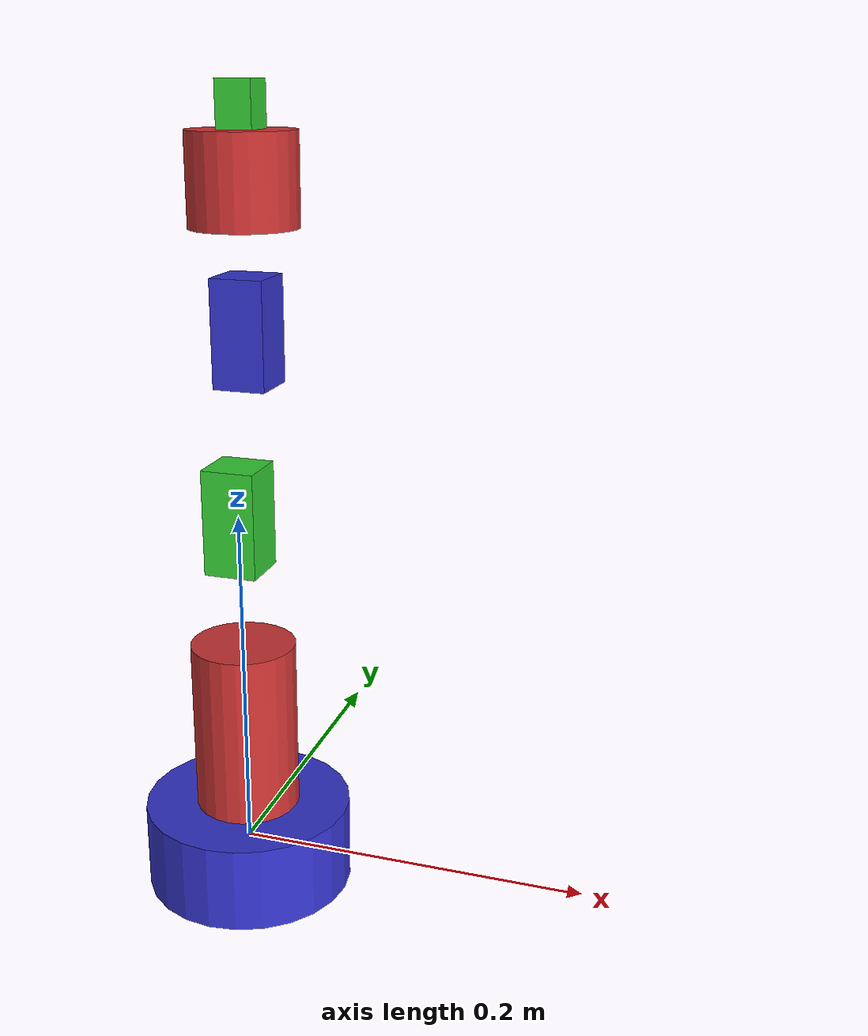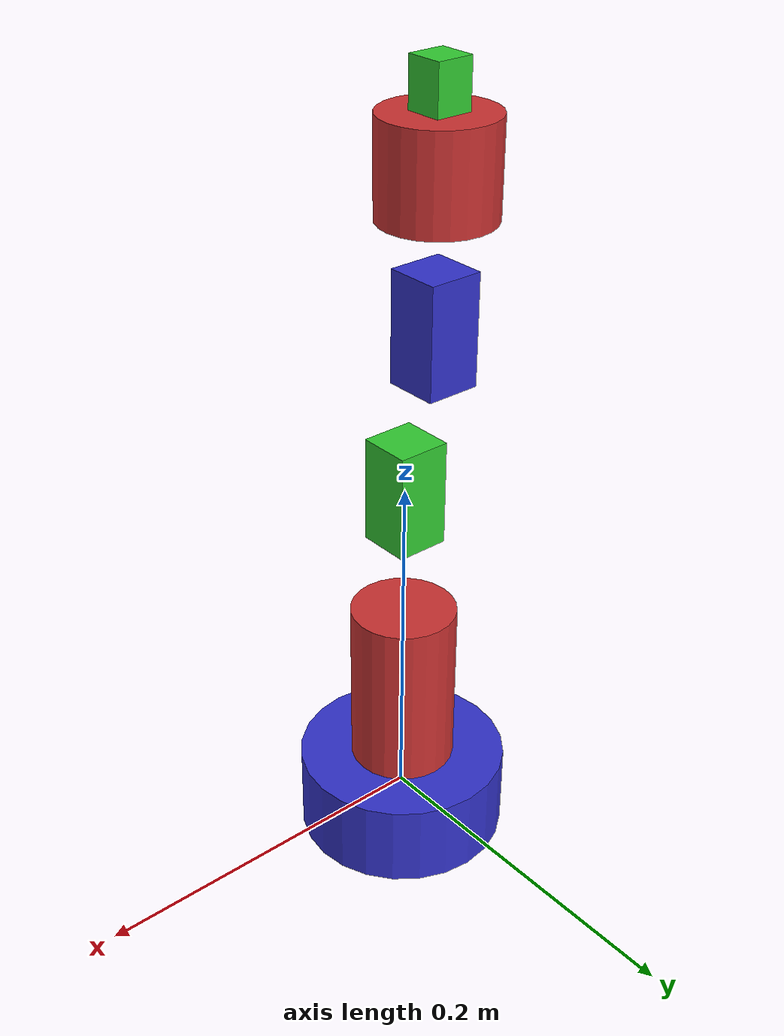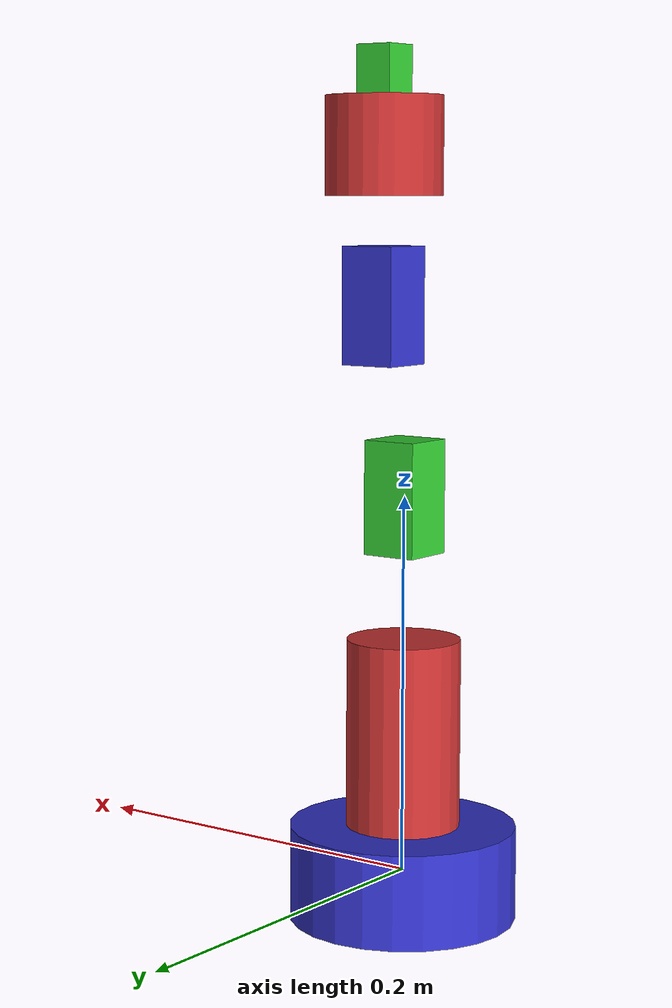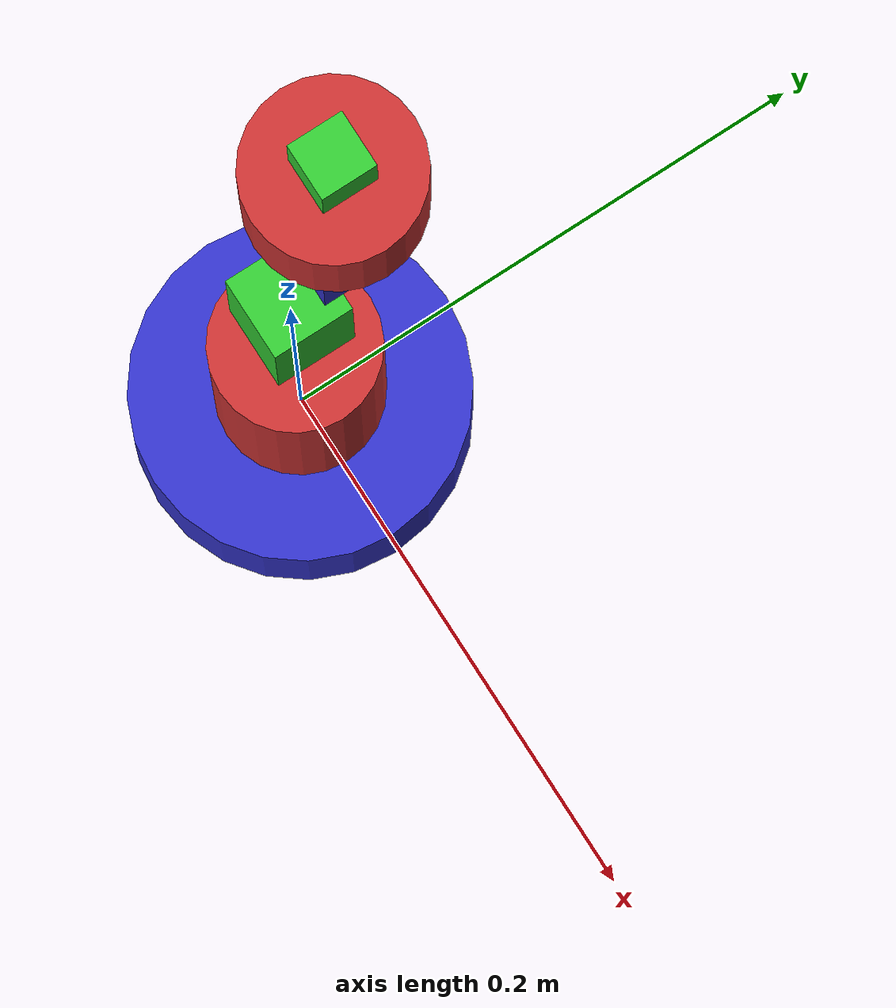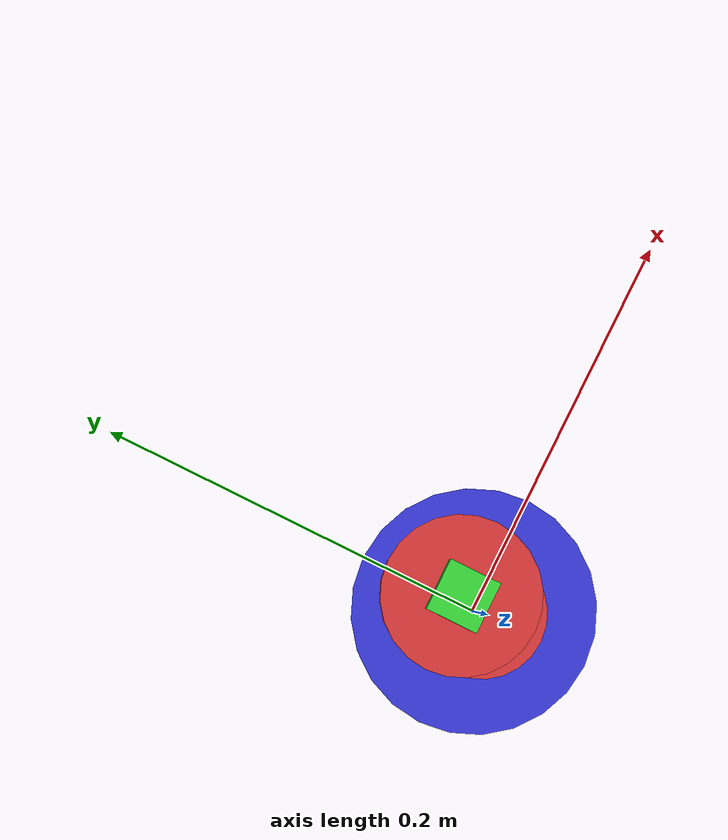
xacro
<?xml version="1.0"?>
<robot xmlns:xacro="http://www.ros.org/wiki/xacro" name="my_robot_arm">

    <!-- Colors -->
    <material name="blue">
        <color rgba="0.2 0.2 0.8 1.0"/>
    </material>
    <material name="red">
        <color rgba="0.8 0.2 0.2 1.0"/>
    </material>
    <material name="green">
        <color rgba="0.2 0.8 0.2 1.0"/>
    </material>

    <!-- World Link -->
    <link name="world"/>

    <!-- Fixed joint between world and base_link -->
    <joint name="world_joint" type="fixed">
        <parent link="world"/>
        <child link="base_link"/>
        <origin xyz="0 0 0" rpy="0 0 0"/>
    </joint>

    <!-- Base Link -->
    <link name="base_link">
        <visual>
            <geometry>
                <cylinder length="0.05" radius="0.06"/>
            </geometry>
            <material name="blue"/>
        </visual>
        <collision>
            <geometry>
                <cylinder length="0.05" radius="0.06"/>
            </geometry>
        </collision>
    </link>

    <!-- Joint 1: Z-axis rotation -->
    <joint name="joint1" type="revolute">
        <parent link="base_link"/>
        <child link="link1"/>
        <origin xyz="0 0 0.05" rpy="0 0 0"/>
        <axis xyz="0 0 1"/>
        <limit lower="-2.356" upper="2.356" effort="100" velocity="1"/>  <!-- -135° to +135° -->
    </joint>

    <link name="link1">
        <inertial>
            <origin xyz="0 0 0.075" rpy="0 0 0"/>
            <mass value="0.5"/>
            <inertia ixx="0.002" ixy="0" ixz="0" iyy="0.002" iyz="0" izz="0.001"/>
        </inertial>
        <visual>
            <geometry>
                <cylinder length="0.15" radius="0.03"/>
            </geometry>
            <material name="red"/>
        </visual>
        <collision>
            <geometry>
                <cylinder length="0.15" radius="0.03"/>
            </geometry>
        </collision>
    </link>

    <!-- Joint 2: X-axis rotation -->
    <joint name="joint2" type="revolute">
        <parent link="link1"/>
        <child link="link2"/>
        <origin xyz="0 0 0.15" rpy="0 0 0"/>
        <axis xyz="1 0 0"/>
        <limit lower="-2.356" upper="2.356" effort="100" velocity="1"/>  <!-- -135° to +135° -->
    </joint>

    <link name="link2">
        <inertial>
            <origin xyz="0 0 0.03" rpy="0 0 0"/>
            <mass value="0.3"/>
            <inertia ixx="0.0005" ixy="0" ixz="0" iyy="0.0005" iyz="0" izz="0.0001"/>
        </inertial>
        <visual>
            <geometry>
                <box size="0.03 0.03 0.06"/>
            </geometry>
            <material name="green"/>
        </visual>
        <collision>
            <geometry>
                <box size="0.03 0.03 0.06"/>
            </geometry>
        </collision>
    </link>

    <!-- Joint 3: X-axis rotation -->
    <joint name="joint3" type="revolute">
        <parent link="link2"/>
        <child link="link3"/>
        <origin xyz="0 0.02 0.1" rpy="0 0 0"/>
        <axis xyz="1 0 0"/>
        <limit lower="-2.356" upper="2.356" effort="100" velocity="1"/>  <!-- -135° to +135° -->
    </joint>

    <link name="link3">
        <inertial>
            <origin xyz="0 0 0.04" rpy="0 0 0"/>
            <mass value="0.3"/>
            <inertia ixx="0.0005" ixy="0" ixz="0" iyy="0.0005" iyz="0" izz="0.0001"/>
        </inertial>
        <visual>
            <geometry>
                <box size="0.03 0.03 0.06"/>
            </geometry>
            <material name="blue"/>
        </visual>
        <collision>
            <geometry>
                <box size="0.03 0.03 0.06"/>
            </geometry>
        </collision>
    </link>

    <!-- Joint 4: X-axis rotation -->
    <joint name="joint4" type="revolute">
        <parent link="link3"/>
        <child link="link4"/>
        <origin xyz="0 0 0.08" rpy="0 0 0"/>
        <axis xyz="1 0 0"/>
        <limit lower="-2.356" upper="2.356" effort="100" velocity="1"/>  <!-- -135° to +135° -->
    </joint>

    <link name="link4">
        <inertial>
            <origin xyz="0 0 0.025" rpy="0 0 0"/>
            <mass value="0.3"/>
            <inertia ixx="0.0005" ixy="0" ixz="0" iyy="0.0005" iyz="0" izz="0.0001"/>
        </inertial>
        <visual>
            <geometry>
                <cylinder length="0.05" radius="0.03"/>
            </geometry>
            <material name="red"/>
        </visual>
        <collision>
            <geometry>
                <cylinder length="0.05" radius="0.03"/>
            </geometry>
        </collision>
    </link>

    <!-- Joint 5: Z-axis rotation -->
    <joint name="joint5" type="revolute">
        <parent link="link4"/>
        <child link="end_effector"/>
        <origin xyz="0 0 0.025" rpy="0 0 0"/>
        <axis xyz="0 0 1"/>
        <limit lower="-1.571" upper="1.571" effort="100" velocity="1"/>  <!-- -90° to +90° -->
    </joint>

    <link name="end_effector">
        <inertial>
            <origin xyz="0 0 0.025" rpy="0 0 0"/>
            <mass value="0.1"/>
            <inertia ixx="0.0001" ixy="0" ixz="0" iyy="0.0001" iyz="0" izz="0.0001"/>
        </inertial>
        <visual>
            <geometry>
                <box size="0.02 0.02 0.05"/>
            </geometry>
            <material name="green"/>
        </visual>
        <collision>
            <geometry>
                <box size="0.02 0.02 0.05"/>
            </geometry>
        </collision>
    </link>

</robot>
